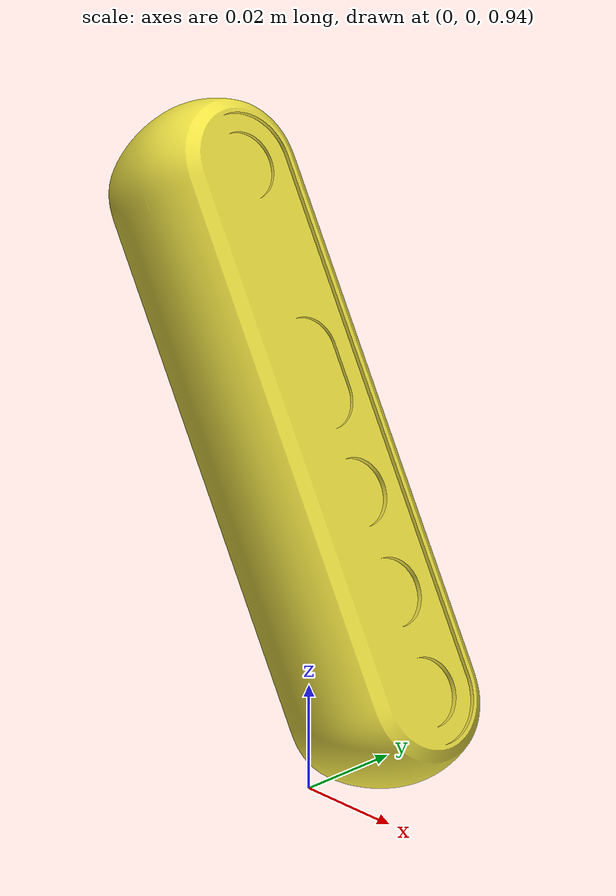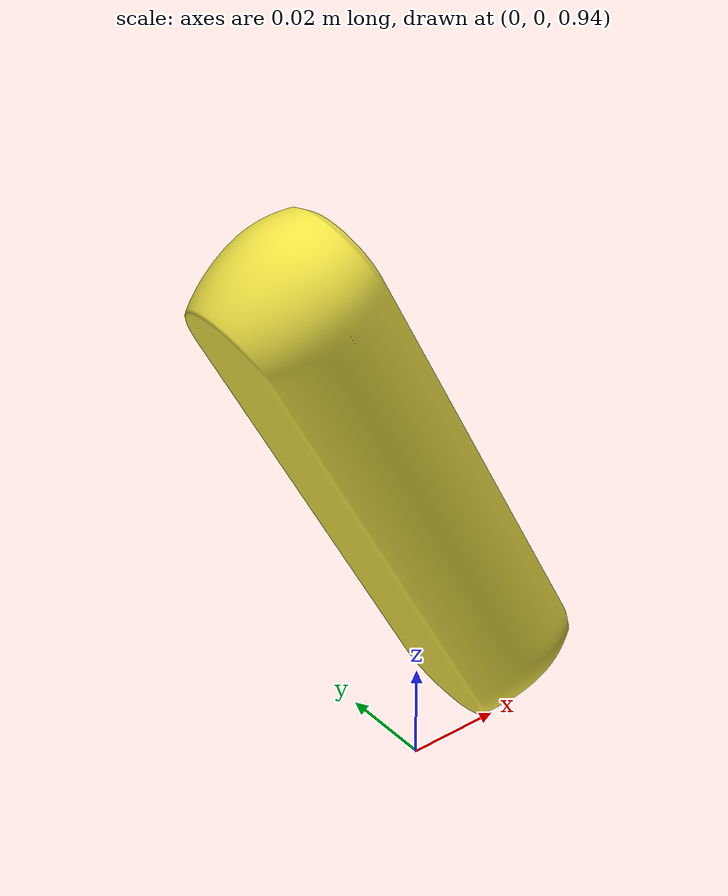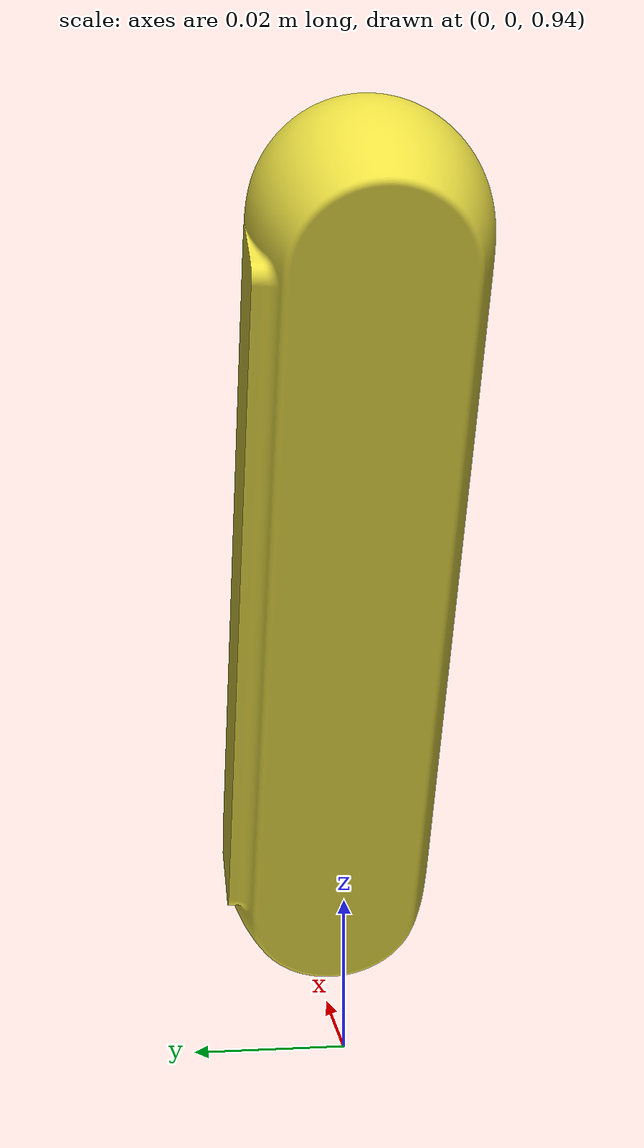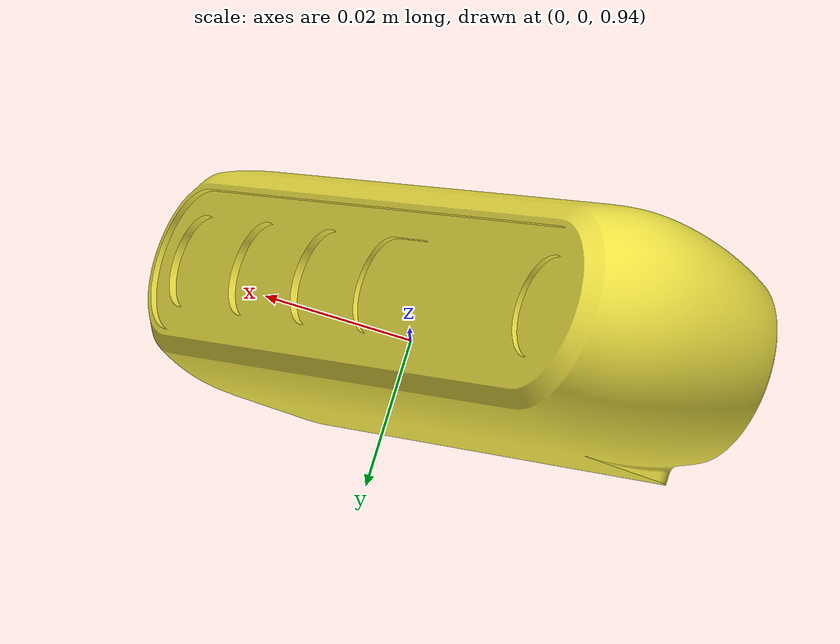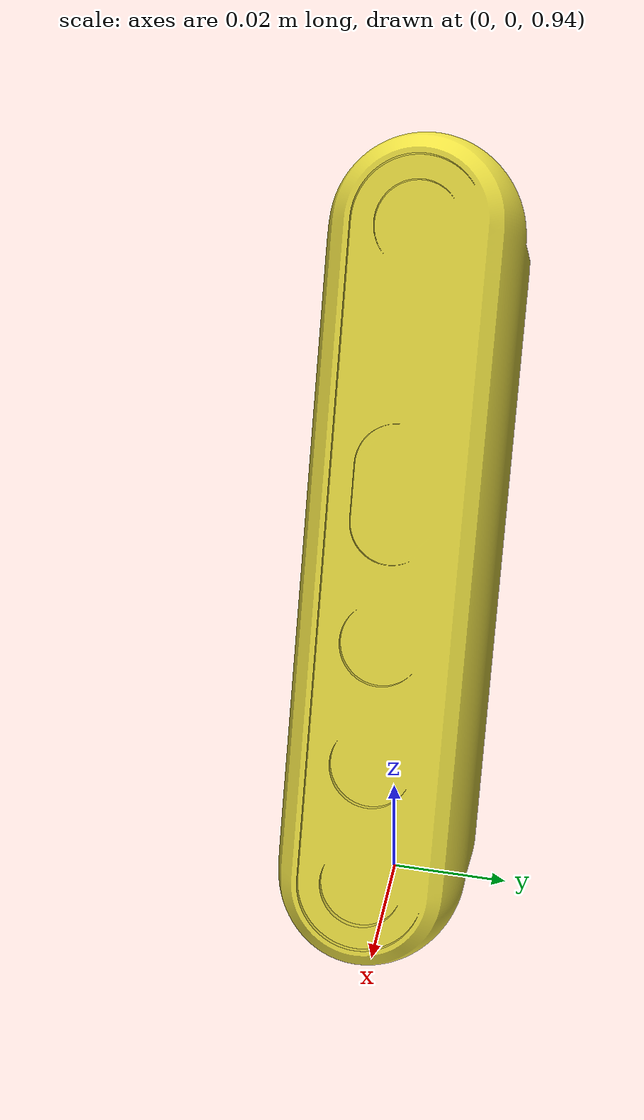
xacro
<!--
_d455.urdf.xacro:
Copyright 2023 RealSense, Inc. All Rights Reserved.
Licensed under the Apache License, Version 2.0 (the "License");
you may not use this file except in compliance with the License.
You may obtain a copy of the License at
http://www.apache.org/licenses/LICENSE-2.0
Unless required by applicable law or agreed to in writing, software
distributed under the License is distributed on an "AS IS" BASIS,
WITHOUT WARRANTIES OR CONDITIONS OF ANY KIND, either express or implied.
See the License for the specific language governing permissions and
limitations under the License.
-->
<?xml version="1.0"?>
<robot name="rs_d455" xmlns:xacro="http://www.ros.org/wiki/xacro">

    <xacro:include filename="$(find realsense2_description)/urdf/_d455.urdf.xacro" />

    <xacro:property name="camera_offset_x" value="-0.00705246" />
    <xacro:property name="camera_offset_y" value="0.015" />
    <xacro:property name="camera_offset_z" value="1.0024883" />
    <xacro:property name="camera_offset_roll" value="1.57079" />
    <xacro:property name="camera_offset_pitch" value="-0.49132" />
    <xacro:property name="camera_offset_yaw" value="0" />
    <xacro:arg name="use_nominal_extrinsics" default="true" />
    <xacro:arg name="camera_name" default="camera" />

    <!-- Camera -->
    <link name="link_2" />
    <joint name="base_camera_joint" type="fixed">
        <origin xyz="${camera_offset_x} ${camera_offset_y} ${camera_offset_z}"
            rpy="${camera_offset_roll} ${camera_offset_pitch} ${camera_offset_yaw}" />
        <parent link="link_2" />
        <child link="base_camera" />
    </joint>
    <link name="base_camera" />
    <xacro:sensor_d455 parent="base_camera"
        use_nominal_extrinsics="$(arg use_nominal_extrinsics)"
        name="$(arg camera_name)">
        <origin xyz="0 0 0" rpy="0 0 0" />
    </xacro:sensor_d455>

</robot>

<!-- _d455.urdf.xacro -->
<!--
This is the URDF model for the RealSense 430 camera, in its
aluminum peripherial evaluation case.
-->

<robot name="sensor_d455" xmlns:xacro="http://ros.org/wiki/xacro">
  <!-- Includes -->
  <xacro:include filename="$(find realsense2_description)/urdf/_materials.urdf.xacro" />
  <xacro:include filename="$(find realsense2_description)/urdf/_usb_plug.urdf.xacro" />

  <xacro:macro name="sensor_d455" params="parent *origin name:=camera use_nominal_extrinsics:=false use_mesh:=true">
    <xacro:arg name="add_plug" default="false" />
    <xacro:property name="M_PI" value="3.1415926535897931" />

    <!-- The following values are approximate, and the camera node
     publishing TF values with actual calibrated camera extrinsic values -->
    <xacro:property name="d455_cam_depth_to_infra1_offset" value="0.0"/>
    <xacro:property name="d455_cam_depth_to_infra2_offset" value="-0.095"/>
    <xacro:property name="d455_cam_depth_to_color_offset" value="-0.059"/>

    <!-- The following values model the aluminum peripherial case for the
  	d455 camera, with the camera joint represented by the actual
  	peripherial camera tripod mount -->
    <xacro:property name="d455_cam_width" value="0.124"/>
    <xacro:property name="d455_cam_height" value="0.029"/>
    <xacro:property name="d455_mass" value="0.116"/>
    <xacro:property name="d455_cam_depth" value="0.026"/>
    <xacro:property name="d455_cam_mount_from_center_offset" value="0.0158"/>
    <!-- glass cover is 0.1 mm inwards from front aluminium plate -->
    <xacro:property name="d455_glass_to_front" value="0.1e-3"/>
    <!-- see datasheet Revision 009, Fig. 4-4 page 68 -->
    <xacro:property name="d455_zero_depth_to_glass" value="4.55e-3"/>
    <!-- convenience precomputation to avoid clutter-->
    <xacro:property name="d455_mesh_x_offset" value="${d455_cam_mount_from_center_offset-d455_glass_to_front-d455_zero_depth_to_glass}"/>

    <!-- The following offset is relative to the physical d455 camera peripherial
  	camera tripod mount -->
    <xacro:property name="d455_cam_depth_px" value="${d455_cam_mount_from_center_offset}"/>
    <xacro:property name="d455_cam_depth_py" value="0.0475"/>
    <xacro:property name="d455_cam_depth_pz" value="${d455_cam_height/2}"/>

    <!-- camera body, with origin at bottom screw mount -->
    <joint name="${name}_joint" type="fixed">
      <xacro:insert_block name="origin" />
      <parent link="${parent}"/>
      <child link="${name}_bottom_screw_frame" />
    </joint>
    <link name="${name}_bottom_screw_frame"/>

    <joint name="${name}_link_joint" type="fixed">
      <origin xyz="${d455_mesh_x_offset} ${d455_cam_depth_py} ${d455_cam_depth_pz}" rpy="0 0 0"/>
      <parent link="${name}_bottom_screw_frame"/>
      <child link="${name}_link" />
    </joint>

    <link name="${name}_link">
      <visual>
        <!-- the mesh origin is at front plate in between the two infrared camera axes -->
        <xacro:if value="${use_mesh}">
          <origin xyz="${d455_zero_depth_to_glass + d455_glass_to_front} ${-d455_cam_depth_py} 0" rpy="${M_PI/2} 0 ${M_PI/2}"/>
          <geometry>
	          <mesh filename="package://realsense2_description/meshes/d455.stl" scale="0.001 0.001 0.001" />
          </geometry>
        </xacro:if>
        <xacro:unless value="${use_mesh}">
          <origin xyz="0 ${-d455_cam_depth_py} 0" rpy="0 0 0"/>
          <geometry>
            <box size="${d455_cam_depth} ${d455_cam_width} ${d455_cam_height}"/>
          </geometry>
          <material name="aluminum"/>
        </xacro:unless>
      </visual>
      <collision>
        <origin xyz="${d455_zero_depth_to_glass-d455_cam_depth/2} ${-d455_cam_depth_py} 0" rpy="0 0 0"/>
        <geometry>
          <box size="${d455_cam_depth} ${d455_cam_width} ${d455_cam_height}"/>
        </geometry>
      </collision>
      <inertial>
        <!-- Nominal mass per D400 Series Datasheet, Rev 023 (Mar 2026), D455 (Table 3-53) (±10%, excludes the ~2.3 g USB cap). Inertia: uniform solid box of the collision size, about the box center. -->
        <mass value="${d455_mass}" />
        <origin xyz="${d455_zero_depth_to_glass-d455_cam_depth/2} ${-d455_cam_depth_py} 0" />
        <inertia ixx="${d455_mass/12*(d455_cam_width*d455_cam_width + d455_cam_height*d455_cam_height)}" ixy="0.0" ixz="0.0"
                 iyy="${d455_mass/12*(d455_cam_depth*d455_cam_depth + d455_cam_height*d455_cam_height)}" iyz="0.0"
                 izz="${d455_mass/12*(d455_cam_depth*d455_cam_depth + d455_cam_width*d455_cam_width)}" />
      </inertial>
    </link>

    <!-- Use the nominal extrinsics between camera frames if the calibrated extrinsics aren't being published. e.g. running the device in simulation  -->
    <xacro:if value="${use_nominal_extrinsics}">
      <!-- camera depth joints and links -->
      <joint name="${name}_depth_joint" type="fixed">
        <origin xyz="0 0 0" rpy="0 0 0"/>
        <parent link="${name}_link"/>
        <child link="${name}_depth_frame" />
      </joint>
      <link name="${name}_depth_frame"/>

      <joint name="${name}_depth_optical_joint" type="fixed">
        <origin xyz="0 0 0" rpy="${-M_PI/2} 0 ${-M_PI/2}" />
        <parent link="${name}_depth_frame" />
        <child link="${name}_depth_optical_frame" />
      </joint>
      <link name="${name}_depth_optical_frame"/>

      <!-- camera left IR joints and links -->
      <joint name="${name}_infra1_joint" type="fixed">
        <origin xyz="0 ${d455_cam_depth_to_infra1_offset} 0" rpy="0 0 0" />
        <parent link="${name}_link" />
        <child link="${name}_infra1_frame" />
      </joint>
      <link name="${name}_infra1_frame"/>

      <joint name="${name}_infra1_optical_joint" type="fixed">
        <origin xyz="0 0 0" rpy="${-M_PI/2} 0 ${-M_PI/2}" />
        <parent link="${name}_infra1_frame" />
        <child link="${name}_infra1_optical_frame" />
      </joint>
      <link name="${name}_infra1_optical_frame"/>

      <!-- camera right IR joints and links -->
      <joint name="${name}_infra2_joint" type="fixed">
        <origin xyz="0 ${d455_cam_depth_to_infra2_offset} 0" rpy="0 0 0" />
        <parent link="${name}_link" />
        <child link="${name}_infra2_frame" />
      </joint>
      <link name="${name}_infra2_frame"/>

      <joint name="${name}_infra2_optical_joint" type="fixed">
        <origin xyz="0 0 0" rpy="${-M_PI/2} 0 ${-M_PI/2}" />
        <parent link="${name}_infra2_frame" />
        <child link="${name}_infra2_optical_frame" />
      </joint>
      <link name="${name}_infra2_optical_frame"/>

      <!-- camera color joints and links -->
      <joint name="${name}_color_joint" type="fixed">
        <origin xyz="0 ${d455_cam_depth_to_color_offset} 0" rpy="0 0 0" />
        <parent link="${name}_link" />
        <child link="${name}_color_frame" />
      </joint>
      <link name="${name}_color_frame"/>

      <joint name="${name}_color_optical_joint" type="fixed">
        <origin xyz="0 0 0" rpy="${-M_PI/2} 0 ${-M_PI/2}" />
        <parent link="${name}_color_frame" />
        <child link="${name}_color_optical_frame" />
      </joint>
      <link name="${name}_color_optical_frame"/>

      <!-- IMU -->
      <!-- see datasheet Revision 009, page 114 -->
      <xacro:property name="d455_imu_px" value="-0.01602"/>
      <xacro:property name="d455_imu_py" value="-0.03022"/>
      <xacro:property name="d455_imu_pz" value="+0.0074"/>

      <link name="${name}_accel_frame" />
      <link name="${name}_accel_optical_frame" />
      <link name="${name}_gyro_frame" />
      <link name="${name}_gyro_optical_frame" />
      <link name="${name}_imu_optical_frame" />

      <joint name="${name}_accel_joint" type="fixed">
        <origin xyz = "${d455_imu_px} ${d455_imu_py} ${d455_imu_pz}" rpy = "0 0 0" />
        <parent link="${name}_link" />
        <child link="${name}_accel_frame" />
      </joint>

      <joint name="${name}_accel_optical_joint" type="fixed">
        <origin xyz = "0 0 0" rpy = "${-M_PI/2} 0 ${-M_PI/2}" />
        <parent link="${name}_accel_frame" />
        <child link="${name}_accel_optical_frame" />
      </joint>

      <joint name="${name}_gyro_joint" type="fixed">
        <origin xyz = "${d455_imu_px} ${d455_imu_py} ${d455_imu_pz}" rpy = "0 0 0" />
        <parent link="${name}_link" />
        <child link="${name}_gyro_frame" />
      </joint>

      <joint name="${name}_gyro_optical_joint" type="fixed">
        <origin xyz = "0 0 0" rpy = "${-M_PI/2} 0 ${-M_PI/2}" />
        <parent link="${name}_gyro_frame" />
        <child link="${name}_gyro_optical_frame" />
      </joint>

      <joint name="${name}_imu_optical_joint" type="fixed">
        <origin xyz = "0 0 0" rpy = "0 0 0" />
        <parent link="${name}_gyro_optical_frame" />
        <child link="${name}_imu_optical_frame" />
      </joint>
    </xacro:if>

    <xacro:if value="$(arg add_plug)">
      <xacro:usb_plug parent="${name}_link" name="${name}_usb_plug">
        <origin xyz="${-0.00406-d455_cam_depth_px} ${-0.03701-d455_cam_depth_py} ${-d455_cam_depth_pz}" rpy="${M_PI/2} 0 0"/>
      </xacro:usb_plug>
    </xacro:if>
  </xacro:macro>
</robot>
